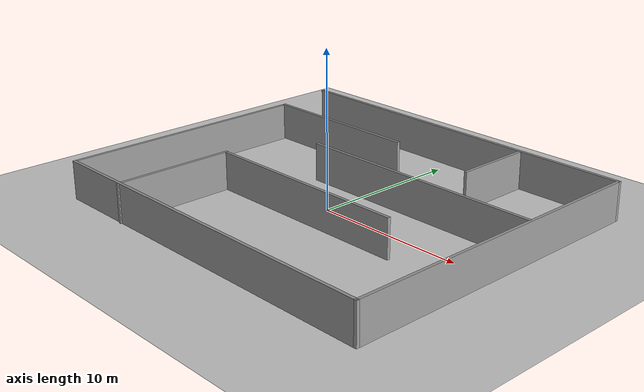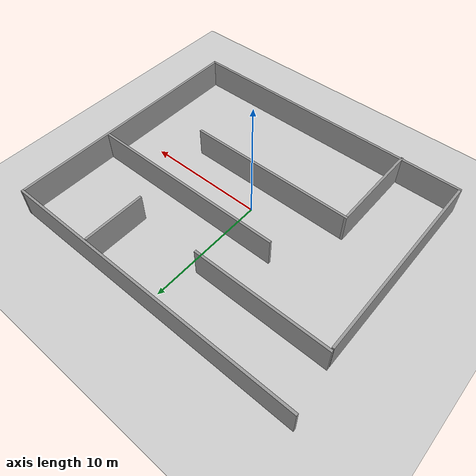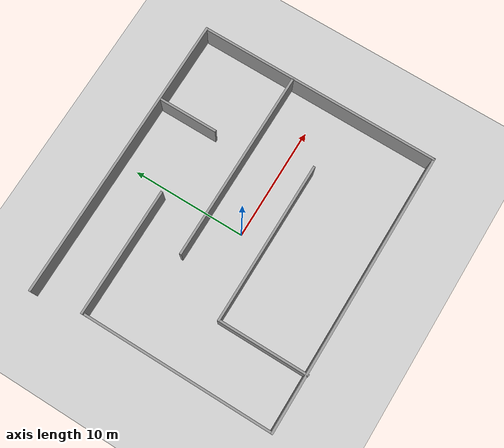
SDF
<?xml version="1.0"?>
<sdf version="1.5">
    <world name="default">

        <!-- A global light source -->
        <include>
            <uri>model://sun</uri>
        </include>

        <!-- Ground -->
        <include>
            <uri>model://ground_plane</uri>
        </include>

        <scene>
			<sky>
				<clouds>
				    <speed>12</speed>
				</clouds>
			</sky>
		</scene>

        <!-- Labyrinth -->
        <include>
            <uri>model://simple_labyrinth</uri>
        </include>

        <!-- Gazebo required specifications -->
        <physics name="default_physics" default="0" type="ode">
            <gravity>0 0 -9.8066</gravity>
            <ode>
                <solver>
                    <type>quick</type>
                    <iters>10</iters>
                    <sor>1.3</sor>
                    <use_dynamic_moi_rescaling>0</use_dynamic_moi_rescaling>
                </solver>
                <constraints>
                    <cfm>0</cfm>
                    <erp>0.2</erp>
                    <contact_max_correcting_vel>100</contact_max_correcting_vel>
                    <contact_surface_layer>0.001</contact_surface_layer>
                </constraints>
            </ode>
            <max_step_size>0.004</max_step_size>
            <real_time_factor>1</real_time_factor>
            <real_time_update_rate>250</real_time_update_rate>
            <magnetic_field>6.0e-6 2.3e-5 -4.2e-5</magnetic_field>
        </physics>

    </world>
</sdf>

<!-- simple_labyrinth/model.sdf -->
<sdf version="1.3">
    <model name="simple_labyrinth">
        <link name="Wall_1">
            <collision name="Wall_1_Collision">
                <geometry>
                    <box>
                        <size>16.718200 0.200000 2.500000</size>
                    </box>
                </geometry>
                <pose>0.000000 0.000000 1.250000 0.000000 0.000000 0.000000</pose>
            </collision>
            <visual name="Wall_1_Visual">
                <pose>0.000000 0.000000 1.250000 0.000000 0.000000 0.000000</pose>
                <geometry>
                    <box>
                        <size>16.718200 0.200000 2.500000</size>
                    </box>
                </geometry>
                <material>
                    <script>
                        <uri>file://media/materials/scripts/gazebo.material</uri>
                        <name>Gazebo/Grey</name>
                    </script>
                </material>
            </visual>
            <velocity_decay>
                <linear>0.000000</linear>
                <angular>0.000000</angular>
            </velocity_decay>
            <pose>-11.863600 -1.672510 0.000000 0.000000 0.000000 -1.570800</pose>
        </link>
        <link name="Wall_10">
            <collision name="Wall_10_Collision">
                <geometry>
                    <box>
                        <size>5.178290 0.200000 2.500000</size>
                    </box>
                </geometry>
                <pose>0.000000 0.000000 1.250000 0.000000 0.000000 0.000000</pose>
            </collision>
            <visual name="Wall_10_Visual">
                <pose>0.000000 0.000000 1.250000 0.000000 0.000000 0.000000</pose>
                <geometry>
                    <box>
                        <size>5.178290 0.200000 2.500000</size>
                    </box>
                </geometry>
                <material>
                    <script>
                        <uri>file://media/materials/scripts/gazebo.material</uri>
                        <name>Gazebo/Grey</name>
                    </script>
                </material>
            </visual>
            <velocity_decay>
                <linear>0.000000</linear>
                <angular>0.000000</angular>
            </velocity_decay>
            <pose>5.663710 8.495340 0.000000 0.000000 0.000000 -1.570800</pose>
        </link>
        <link name="Wall_12">
            <collision name="Wall_12_Collision">
                <geometry>
                    <box>
                        <size>7.992110 0.200000 2.500000</size>
                    </box>
                </geometry>
                <pose>0.000000 0.000000 1.250000 0.000000 0.000000 0.000000</pose>
            </collision>
            <visual name="Wall_12_Visual">
                <pose>0.000000 0.000000 1.250000 0.000000 0.000000 0.000000</pose>
                <geometry>
                    <box>
                        <size>7.992110 0.200000 2.500000</size>
                    </box>
                </geometry>
                <material>
                    <script>
                        <uri>file://media/materials/scripts/gazebo.material</uri>
                        <name>Gazebo/Grey</name>
                    </script>
                </material>
            </visual>
            <velocity_decay>
                <linear>0.000000</linear>
                <angular>0.000000</angular>
            </velocity_decay>
            <pose>-6.890250 -6.114860 0.000000 0.000000 0.000000 1.570800</pose>
        </link>
        <link name="Wall_13">
            <collision name="Wall_13_Collision">
                <geometry>
                    <box>
                        <size>14.269100 0.200000 2.500000</size>
                    </box>
                </geometry>
                <pose>0.000000 0.000000 1.250000 0.000000 0.000000 0.000000</pose>
            </collision>
            <visual name="Wall_13_Visual">
                <pose>0.000000 0.000000 1.250000 0.000000 0.000000 0.000000</pose>
                <geometry>
                    <box>
                        <size>14.269100 0.200000 2.500000</size>
                    </box>
                </geometry>
                <material>
                    <script>
                        <uri>file://media/materials/scripts/gazebo.material</uri>
                        <name>Gazebo/Grey</name>
                    </script>
                </material>
            </visual>
            <velocity_decay>
                <linear>0.000000</linear>
                <angular>0.000000</angular>
            </velocity_decay>
            <pose>0.144297 -2.218810 0.000000 0.000000 0.000000 0.000000</pose>
        </link>
        <link name="Wall_2">
            <collision name="Wall_2_Collision">
                <geometry>
                    <box>
                        <size>24.798500 0.200000 2.500000</size>
                    </box>
                </geometry>
                <pose>0.000000 0.000000 1.250000 0.000000 0.000000 0.000000</pose>
            </collision>
            <visual name="Wall_2_Visual">
                <pose>0.000000 0.000000 1.250000 0.000000 0.000000 0.000000</pose>
                <geometry>
                    <box>
                        <size>24.798500 0.200000 2.500000</size>
                    </box>
                </geometry>
                <material>
                    <script>
                        <uri>file://media/materials/scripts/gazebo.material</uri>
                        <name>Gazebo/Grey</name>
                    </script>
                </material>
            </visual>
            <velocity_decay>
                <linear>0.000000</linear>
                <angular>0.000000</angular>
            </velocity_decay>
            <pose>0.435691 -9.931630 0.000000 0.000000 0.000000 0.000000</pose>
        </link>
        <link name="Wall_3">
            <collision name="Wall_3_Collision">
                <geometry>
                    <box>
                        <size>21.332600 0.200000 2.500000</size>
                    </box>
                </geometry>
                <pose>0.000000 0.000000 1.250000 0.000000 0.000000 0.000000</pose>
            </collision>
            <visual name="Wall_3_Visual">
                <pose>0.000000 0.000000 1.250000 0.000000 0.000000 0.000000</pose>
                <geometry>
                    <box>
                        <size>21.332600 0.200000 2.500000</size>
                    </box>
                </geometry>
                <material>
                    <script>
                        <uri>file://media/materials/scripts/gazebo.material</uri>
                        <name>Gazebo/Grey</name>
                    </script>
                </material>
            </visual>
            <velocity_decay>
                <linear>0.000000</linear>
                <angular>0.000000</angular>
            </velocity_decay>
            <pose>12.734900 0.634654 0.000000 0.000000 0.000000 1.570800</pose>
        </link>
        <link name="Wall_4">
            <collision name="Wall_4_Collision">
                <geometry>
                    <box>
                        <size>25.452800 0.200000 2.500000</size>
                    </box>
                </geometry>
                <pose>0.000000 0.000000 1.250000 0.000000 0.000000 0.000000</pose>
            </collision>
            <visual name="Wall_4_Visual">
                <pose>0.000000 0.000000 1.250000 0.000000 0.000000 0.000000</pose>
                <geometry>
                    <box>
                        <size>25.452800 0.200000 2.500000</size>
                    </box>
                </geometry>
                <material>
                    <script>
                        <uri>file://media/materials/scripts/gazebo.material</uri>
                        <name>Gazebo/Grey</name>
                    </script>
                </material>
            </visual>
            <velocity_decay>
                <linear>0.000000</linear>
                <angular>0.000000</angular>
            </velocity_decay>
            <pose>0.108526 11.200900 0.000000 0.000000 0.000000 3.141590</pose>
        </link>
        <link name="Wall_6">
            <collision name="Wall_6_Collision">
                <geometry>
                    <box>
                        <size>11.238800 0.200000 2.500000</size>
                    </box>
                </geometry>
                <pose>0.000000 0.000000 1.250000 0.000000 0.000000 0.000000</pose>
            </collision>
            <visual name="Wall_6_Visual">
                <pose>0.000000 0.000000 1.250000 0.000000 0.000000 0.000000</pose>
                <geometry>
                    <box>
                        <size>11.238800 0.200000 2.500000</size>
                    </box>
                </geometry>
                <material>
                    <script>
                        <uri>file://media/materials/scripts/gazebo.material</uri>
                        <name>Gazebo/Grey</name>
                    </script>
                </material>
            </visual>
            <velocity_decay>
                <linear>0.000000</linear>
                <angular>0.000000</angular>
            </velocity_decay>
            <pose>-6.349130 6.871980 0.000000 0.000000 0.000000 0.000000</pose>
        </link>
        <link name="Wall_8">
            <collision name="Wall_8_Collision">
                <geometry>
                    <box>
                        <size>16.866500 0.200000 2.500000</size>
                    </box>
                </geometry>
                <pose>0.000000 0.000000 1.250000 0.000000 0.000000 0.000000</pose>
            </collision>
            <visual name="Wall_8_Visual">
                <pose>0.000000 0.000000 1.250000 0.000000 0.000000 0.000000</pose>
                <geometry>
                    <box>
                        <size>16.866500 0.200000 2.500000</size>
                    </box>
                </geometry>
                <material>
                    <script>
                        <uri>file://media/materials/scripts/gazebo.material</uri>
                        <name>Gazebo/Grey</name>
                    </script>
                </material>
            </visual>
            <velocity_decay>
                <linear>0.000000</linear>
                <angular>0.000000</angular>
            </velocity_decay>
            <pose>4.256800 2.975930 0.000000 0.000000 0.000000 3.141590</pose>
        </link>
        <static>1</static>
    </model>
</sdf>
